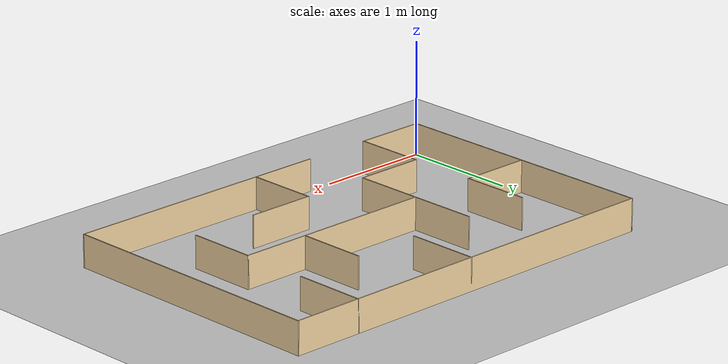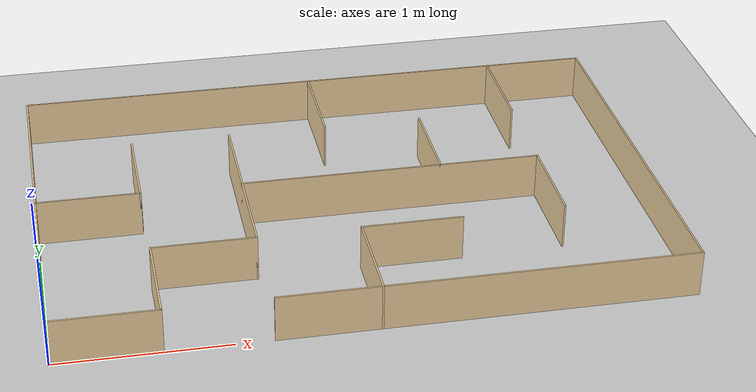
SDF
<?xml version="1.0" ?>
<sdf version="1.4">
  <world name="default">
    <scene>
      <ambient>0.5 0.5 0.5 1.0</ambient>
      <shadows>0</shadows>
    </scene>
    <include>
      <uri>model://ground_plane</uri>
    </include>
    <include>
      <uri>model://sun</uri>
    </include>

    <model name='labyrinth_normal1'>
    <pose frame=''>-1.395 -0.508426 0 0 -0 0</pose>
    <link name='Wall_0'>
      <collision name='Wall_0_Collision'>
        <geometry>
          <box>
            <size>2.43 0.01 0.28</size>
          </box>
        </geometry>
        <pose frame=''>0 0 0.14 0 -0 0</pose>
      </collision>
      <visual name='Wall_0_Visual'>
        <pose frame=''>0 0 0.14 0 -0 0</pose>
        <geometry>
          <box>
            <size>2.43 0.01 0.28</size>
          </box>
        </geometry>
        <material>
          <script>
            <uri>file://media/materials/scripts/gazebo.material</uri>
            <name>Gazebo/Grey</name>
          </script>
          <ambient>0.921569 0.807843 0.615686 1</ambient>
        </material>
        <meta>
          <layer>0</layer>
        </meta>
      </visual>
      <pose frame=''>1.395 1.71843 0 0 -0 1.5708</pose>
    </link>
    <link name='Wall_14'>
      <collision name='Wall_14_Collision'>
        <geometry>
          <box>
            <size>0.6 0.01 0.28</size>
          </box>
        </geometry>
        <pose frame=''>0 0 0.14 0 -0 0</pose>
      </collision>
      <visual name='Wall_14_Visual'>
        <pose frame=''>0 0 0.14 0 -0 0</pose>
        <geometry>
          <box>
            <size>0.6 0.01 0.28</size>
          </box>
        </geometry>
        <material>
          <script>
            <uri>file://media/materials/scripts/gazebo.material</uri>
            <name>Gazebo/Grey</name>
          </script>
          <ambient>0.921569 0.807843 0.615686 1</ambient>
        </material>
        <meta>
          <layer>0</layer>
        </meta>
      </visual>
      <pose frame=''>3.805 2.01343 0 0 -0 1.5708</pose>
    </link>
    <link name='Wall_17'>
      <collision name='Wall_17_Collision'>
        <geometry>
          <box>
            <size>2.43 0.01 0.28</size>
          </box>
        </geometry>
        <pose frame=''>0 0 0.14 0 -0 0</pose>
      </collision>
      <visual name='Wall_17_Visual'>
        <pose frame=''>0 0 0.14 0 -0 0</pose>
        <geometry>
          <box>
            <size>2.43 0.01 0.28</size>
          </box>
        </geometry>
        <material>
          <script>
            <uri>file://media/materials/scripts/gazebo.material</uri>
            <name>Gazebo/Grey</name>
          </script>
          <ambient>0.921569 0.807843 0.615686 1</ambient>
        </material>
        <meta>
          <layer>0</layer>
        </meta>
      </visual>
      <pose frame=''>5.015 1.71843 0 0 0 -1.5708</pose>
    </link>
    <link name='Wall_19'>
      <collision name='Wall_19_Collision'>
        <geometry>
          <box>
            <size>2.41 0.01 0.28</size>
          </box>
        </geometry>
        <pose frame=''>0 0 0.14 0 -0 0</pose>
      </collision>
      <visual name='Wall_19_Visual'>
        <pose frame=''>0 0 0.14 0 -0 0</pose>
        <geometry>
          <box>
            <size>2.41 0.01 0.28</size>
          </box>
        </geometry>
        <material>
          <script>
            <uri>file://media/materials/scripts/gazebo.material</uri>
            <name>Gazebo/Grey</name>
          </script>
          <ambient>0.921569 0.807843 0.615686 1</ambient>
        </material>
        <meta>
          <layer>0</layer>
        </meta>
      </visual>
      <pose frame=''>3.815 0.508426 0 0 -0 3.14159</pose>
    </link>
    <link name='Wall_21'>
      <collision name='Wall_21_Collision'>
        <geometry>
          <box>
            <size>0.62 0.01 0.28</size>
          </box>
        </geometry>
        <pose frame=''>0 0 0.14 0 -0 0</pose>
      </collision>
      <visual name='Wall_21_Visual'>
        <pose frame=''>0 0 0.14 0 -0 0</pose>
        <geometry>
          <box>
            <size>0.62 0.01 0.28</size>
          </box>
        </geometry>
        <material>
          <script>
            <uri>file://media/materials/scripts/gazebo.material</uri>
            <name>Gazebo/Grey</name>
          </script>
          <ambient>0.921569 0.807843 0.615686 1</ambient>
        </material>
        <meta>
          <layer>0</layer>
        </meta>
      </visual>
      <pose frame=''>1.7 0.508426 0 0 -0 3.14159</pose>
    </link>
    <link name='Wall_23'>
      <collision name='Wall_23_Collision'>
        <geometry>
          <box>
            <size>0.63 0.01 0.28</size>
          </box>
        </geometry>
        <pose frame=''>0 0 0.14 0 -0 0</pose>
      </collision>
      <visual name='Wall_23_Visual'>
        <pose frame=''>0 0 0.14 0 -0 0</pose>
        <geometry>
          <box>
            <size>0.63 0.01 0.28</size>
          </box>
        </geometry>
        <material>
          <script>
            <uri>file://media/materials/scripts/gazebo.material</uri>
            <name>Gazebo/Grey</name>
          </script>
          <ambient>0.921569 0.807843 0.615686 1</ambient>
        </material>
        <meta>
          <layer>0</layer>
        </meta>
      </visual>
      <pose frame=''>4.405 2.61843 0 0 0 -1.5708</pose>
    </link>
    <link name='Wall_25'>
      <collision name='Wall_25_Collision'>
        <geometry>
          <box>
            <size>0.6 0.01 0.28</size>
          </box>
        </geometry>
        <pose frame=''>0 0 0.14 0 -0 0</pose>
      </collision>
      <visual name='Wall_25_Visual'>
        <pose frame=''>0 0 0.14 0 -0 0</pose>
        <geometry>
          <box>
            <size>0.6 0.01 0.28</size>
          </box>
        </geometry>
        <material>
          <script>
            <uri>file://media/materials/scripts/gazebo.material</uri>
            <name>Gazebo/Grey</name>
          </script>
          <ambient>0.921569 0.807843 0.615686 1</ambient>
        </material>
        <meta>
          <layer>0</layer>
        </meta>
      </visual>
      <pose frame=''>3.5 1.11843 0 0 -0 0</pose>
    </link>
    <link name='Wall_27'>
      <collision name='Wall_27_Collision'>
        <geometry>
          <box>
            <size>0.6 0.01 0.28</size>
          </box>
        </geometry>
        <pose frame=''>0 0 0.14 0 -0 0</pose>
      </collision>
      <visual name='Wall_27_Visual'>
        <pose frame=''>0 0 0.14 0 -0 0</pose>
        <geometry>
          <box>
            <size>0.6 0.01 0.28</size>
          </box>
        </geometry>
        <material>
          <script>
            <uri>file://media/materials/scripts/gazebo.material</uri>
            <name>Gazebo/Grey</name>
          </script>
          <ambient>0.921569 0.807843 0.615686 1</ambient>
        </material>
        <meta>
          <layer>0</layer>
        </meta>
      </visual>
      <pose frame=''>4.405 1.42343 0 0 0 -1.5708</pose>
    </link>
    <link name='Wall_29'>
      <collision name='Wall_29_Collision'>
        <geometry>
          <box>
            <size>0.62 0.01 0.28</size>
          </box>
        </geometry>
        <pose frame=''>0 0 0.14 0 -0 0</pose>
      </collision>
      <visual name='Wall_29_Visual'>
        <pose frame=''>0 0 0.14 0 -0 0</pose>
        <geometry>
          <box>
            <size>0.62 0.01 0.28</size>
          </box>
        </geometry>
        <material>
          <script>
            <uri>file://media/materials/scripts/gazebo.material</uri>
            <name>Gazebo/Grey</name>
          </script>
          <ambient>0.921569 0.807843 0.615686 1</ambient>
        </material>
        <meta>
          <layer>0</layer>
        </meta>
      </visual>
      <pose frame=''>3.205 0.813426 0 0 -0 1.5708</pose>
    </link>
    <link name='Wall_3'>
      <collision name='Wall_3_Collision'>
        <geometry>
          <box>
            <size>3.63 0.01 0.28</size>
          </box>
        </geometry>
        <pose frame=''>0 0 0.14 0 -0 0</pose>
      </collision>
      <visual name='Wall_3_Visual'>
        <pose frame=''>0 0 0.14 0 -0 0</pose>
        <geometry>
          <box>
            <size>3.63 0.01 0.28</size>
          </box>
        </geometry>
        <material>
          <script>
            <uri>file://media/materials/scripts/gazebo.material</uri>
            <name>Gazebo/Grey</name>
          </script>
          <ambient>0.921569 0.807843 0.615686 1</ambient>
        </material>
        <meta>
          <layer>0</layer>
        </meta>
      </visual>
      <pose frame=''>3.205 2.92843 0 0 -0 0</pose>
    </link>
    <link name='Wall_31'>
      <collision name='Wall_31_Collision'>
        <geometry>
          <box>
            <size>1.81 0.01 0.28</size>
          </box>
        </geometry>
        <pose frame=''>0 0 0.14 0 -0 0</pose>
      </collision>
      <visual name='Wall_31_Visual'>
        <pose frame=''>0 0 0.14 0 -0 0</pose>
        <geometry>
          <box>
            <size>1.81 0.01 0.28</size>
          </box>
        </geometry>
        <material>
          <script>
            <uri>file://media/materials/scripts/gazebo.material</uri>
            <name>Gazebo/Grey</name>
          </script>
          <ambient>0.921569 0.807843 0.615686 1</ambient>
        </material>
        <meta>
          <layer>0</layer>
        </meta>
      </visual>
      <pose frame=''>3.505 1.71843 0 0 -0 0</pose>
    </link>
    <link name='Wall_33'>
      <collision name='Wall_33_Collision'>
        <geometry>
          <box>
            <size>1.2 0.01 0.28</size>
          </box>
        </geometry>
        <pose frame=''>0 0 0.14 0 -0 0</pose>
      </collision>
      <visual name='Wall_33_Visual'>
        <pose frame=''>0 0 0.14 0 -0 0</pose>
        <geometry>
          <box>
            <size>1.2 0.01 0.28</size>
          </box>
        </geometry>
        <material>
          <script>
            <uri>file://media/materials/scripts/gazebo.material</uri>
            <name>Gazebo/Grey</name>
          </script>
          <ambient>0.921569 0.807843 0.615686 1</ambient>
        </material>
        <meta>
          <layer>0</layer>
        </meta>
      </visual>
      <pose frame=''>2.605 1.71343 0 0 -0 1.5708</pose>
    </link>
    <link name='Wall_35'>
      <collision name='Wall_35_Collision'>
        <geometry>
          <box>
            <size>0.61 0.01 0.28</size>
          </box>
        </geometry>
        <pose frame=''>0 0 0.14 0 -0 0</pose>
      </collision>
      <visual name='Wall_35_Visual'>
        <pose frame=''>0 0 0.14 0 -0 0</pose>
        <geometry>
          <box>
            <size>0.61 0.01 0.28</size>
          </box>
        </geometry>
        <material>
          <script>
            <uri>file://media/materials/scripts/gazebo.material</uri>
            <name>Gazebo/Grey</name>
          </script>
          <ambient>0.921569 0.807843 0.615686 1</ambient>
        </material>
        <meta>
          <layer>0</layer>
        </meta>
      </visual>
      <pose frame=''>2.305 1.11843 0 0 -0 0</pose>
    </link>
    <link name='Wall_37'>
      <collision name='Wall_37_Collision'>
        <geometry>
          <box>
            <size>0.6 0.01 0.28</size>
          </box>
        </geometry>
        <pose frame=''>0 0 0.14 0 -0 0</pose>
      </collision>
      <visual name='Wall_37_Visual'>
        <pose frame=''>0 0 0.14 0 -0 0</pose>
        <geometry>
          <box>
            <size>0.6 0.01 0.28</size>
          </box>
        </geometry>
        <material>
          <script>
            <uri>file://media/materials/scripts/gazebo.material</uri>
            <name>Gazebo/Grey</name>
          </script>
          <ambient>0.921569 0.807843 0.615686 1</ambient>
        </material>
        <meta>
          <layer>0</layer>
        </meta>
      </visual>
      <pose frame=''>2.005 2.01343 0 0 -0 1.5708</pose>
    </link>
    <link name='Wall_39'>
      <collision name='Wall_39_Collision'>
        <geometry>
          <box>
            <size>0.62 0.01 0.28</size>
          </box>
        </geometry>
        <pose frame=''>0 0 0.14 0 -0 0</pose>
      </collision>
      <visual name='Wall_39_Visual'>
        <pose frame=''>0 0 0.14 0 -0 0</pose>
        <geometry>
          <box>
            <size>0.62 0.01 0.28</size>
          </box>
        </geometry>
        <material>
          <script>
            <uri>file://media/materials/scripts/gazebo.material</uri>
            <name>Gazebo/Grey</name>
          </script>
          <ambient>0.921569 0.807843 0.615686 1</ambient>
        </material>
        <meta>
          <layer>0</layer>
        </meta>
      </visual>
      <pose frame=''>1.7 1.71843 0 0 -0 0</pose>
    </link>
    <link name='Wall_5'>
      <collision name='Wall_5_Collision'>
        <geometry>
          <box>
            <size>0.63 0.01 0.28</size>
          </box>
        </geometry>
        <pose frame=''>0 0 0.14 0 -0 0</pose>
      </collision>
      <visual name='Wall_5_Visual'>
        <pose frame=''>0 0 0.14 0 -0 0</pose>
        <geometry>
          <box>
            <size>0.63 0.01 0.28</size>
          </box>
        </geometry>
        <material>
          <script>
            <uri>file://media/materials/scripts/gazebo.material</uri>
            <name>Gazebo/Grey</name>
          </script>
          <ambient>0.921569 0.807843 0.615686 1</ambient>
        </material>
        <meta>
          <layer>0</layer>
        </meta>
      </visual>
      <pose frame=''>3.205 2.61843 0 0 0 -1.5708</pose>
    </link>
    <link name='Wall_7'>
      <collision name='Wall_7_Collision'>
        <geometry>
          <box>
            <size>0.62 0.01 0.28</size>
          </box>
        </geometry>
        <pose frame=''>0 0 0.14 0 -0 0</pose>
      </collision>
      <visual name='Wall_7_Visual'>
        <pose frame=''>0 0 0.14 0 -0 0</pose>
        <geometry>
          <box>
            <size>0.62 0.01 0.28</size>
          </box>
        </geometry>
        <material>
          <script>
            <uri>file://media/materials/scripts/gazebo.material</uri>
            <name>Gazebo/Grey</name>
          </script>
          <ambient>0.921569 0.807843 0.615686 1</ambient>
        </material>
        <meta>
          <layer>0</layer>
        </meta>
      </visual>
      <pose frame=''>2.005 0.813426 0 0 -0 1.5708</pose>
    </link>
    <static>1</static>
  </model>

  </world>
</sdf>
